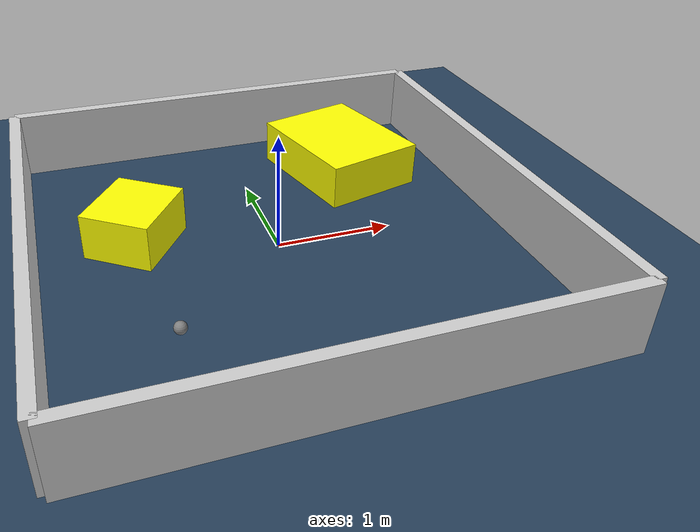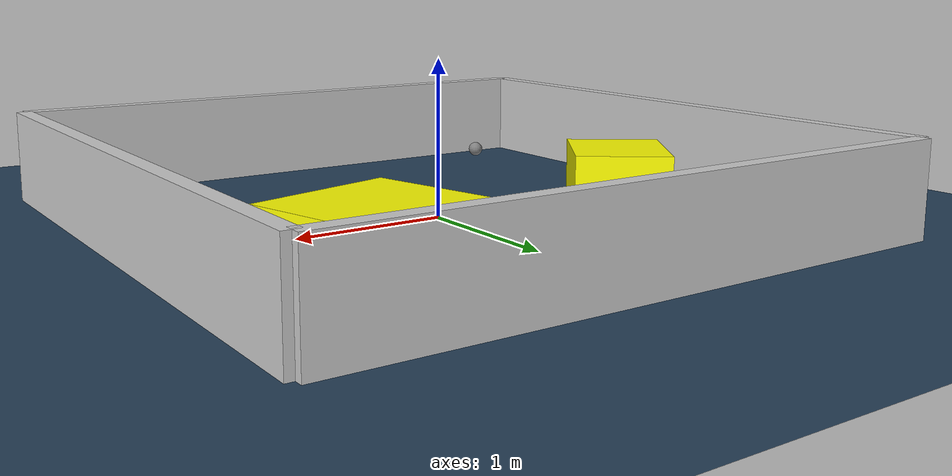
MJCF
<?xml version="1.0" ?>
<mujoco model="generated_environment">
  <option timestep="0.01" integrator="RK4" cone="elliptic"/>
  <default>
    <geom density="1"/>
  </default>
  <asset>
    <texture builtin="gradient" height="3072" rgb1="0.3 0.5 0.7" rgb2="0 0 0" type="skybox" width="512"/>
    <texture builtin="checker" height="300" mark="edge" markrgb="0.8 0.8 0.8" name="groundplane" rgb1="0.2 0.3 0.4" rgb2="0.1 0.2 0.3" type="2d" width="300"/>
    <material name="groundplane" reflectance="0.2" texrepeat="5 5" texture="groundplane" texuniform="true"/>
    <material name="robot" rgba="0.0 1.0 0.0 1"/>
  </asset>
  <worldbody>
    <light dir="0 0 -1" directional="true" pos="0 0 1.5"/>
    <geom condim="4" friction="1.0 0.005 0.001" material="groundplane" name="floor" size="0 0 0.05" type="plane"/>
    <body name="walls">
      <geom name="wall_1" condim="4" pos="-2.0 0.0 0.3" rgba="0.800000011920929 0.800000011920929 0.800000011920929 1.0" size="0.05 2.0 0.3" type="box"/>
      <geom name="wall_2" condim="4" pos="2.0 0.0 0.3" rgba="0.800000011920929 0.800000011920929 0.800000011920929 1.0" size="0.05 2.0 0.3" type="box"/>
      <geom name="wall_3" condim="4" pos="0.0 -2.0 0.3" rgba="0.800000011920929 0.800000011920929 0.800000011920929 1.0" size="2.0 0.05 0.3" type="box"/>
      <geom name="wall_4" condim="4" pos="0.0 2.0 0.3" rgba="0.800000011920929 0.800000011920929 0.800000011920929 1.0" size="2.0 0.05 0.3" type="box"/>
    </body>
    <body name="robot">
      <joint name="joint_x" type="slide" pos="0 0 0" axis="1 0 0"/>
      <joint name="joint_y" type="slide" pos="0 0 0" axis="0 1 0"/>
      <geom name="robot" type="sphere" pos="-1.034737936046311 -1.0447617711713324 0.2" size="0.05" mass="5." friction="1.0 0.005 0.0001" condim="4"/>
      <site name="sensor_ball"/>
    </body>
    <body name="obstacle_1_movable">
      <geom name="obstacle_1_movable" condim="4" pos="-1.1356359921341315 0.40342088429782175 0.2" euler="0 0 144.22300990863738" friction="1.0 0.005 0.001" rgba="1 1 0 1" size="0.3043881522401625 0.3418385972020378 0.2" type="box" mass="0.1"/>
      <joint type="free"/>
    </body>
    <body name="obstacle_2_movable">
      <geom name="obstacle_2_movable" condim="4" pos="0.9752069274419863 1.1065111335735698 0.2" euler="0 0 194.57064178841568" friction="1.0 0.005 0.001" rgba="1 1 0 1" size="0.4654898272097788 0.5857038058343988 0.2" type="box" mass="0.1"/>
      <joint type="free"/>
    </body>
  </worldbody>
  <actuator>
    <motor name="actuator_x" joint="joint_x" gear="1" ctrlrange="-1 1"/>
    <motor name="actuator_y" joint="joint_y" gear="1" ctrlrange="-1 1"/>
  </actuator>
</mujoco>
